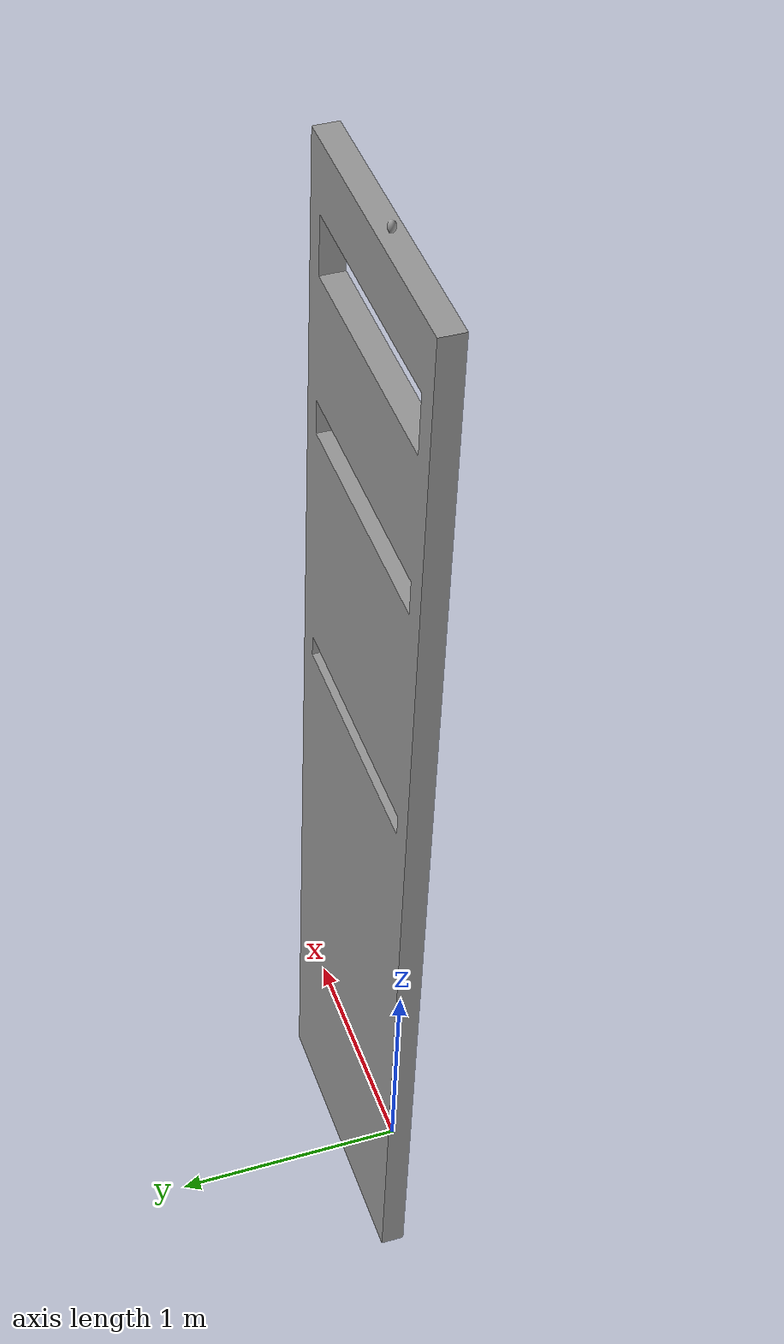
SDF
<?xml version="1.0"?>
<sdf version='1.5'>
  <model name='parede'>

    <static>true</static>
    <link name="link">
      <pose>0 0 0 0 0 0</pose>

      <inertial>
        <mass>1</mass>
        <inertia>
          <ixx>0.166666</ixx>
          <iyy>0.166666</iyy>
          <izz>0.166666</izz>
          <ixy>0</ixy>
          <ixz>0</ixz>
          <iyz>0</iyz>
        </inertia>
      </inertial>

      <visual name="visual">
        <geometry>
          <mesh>
            <scale>0.001 0.001 0.001</scale>
            <uri>model://parede/meshes/another_brick_in_the_wall.stl</uri>
          </mesh>
        </geometry>
        <material>
          <script>
            <name>Gazebo/Grey</name>
            <uri>file://media/materials/scripts/gazebo.material</uri>
          </script>
        </material>
        <cast_shadows>0</cast_shadows>
      </visual>

      <collision name="collision">
        <geometry>
          <mesh>
            <scale>0.001 0.001 0.001</scale>
            <uri>model://parede/meshes/another_brick_in_the_wall.stl</uri>
          </mesh>
        </geometry>
      </collision>

    </link>
  </model>
</sdf>
